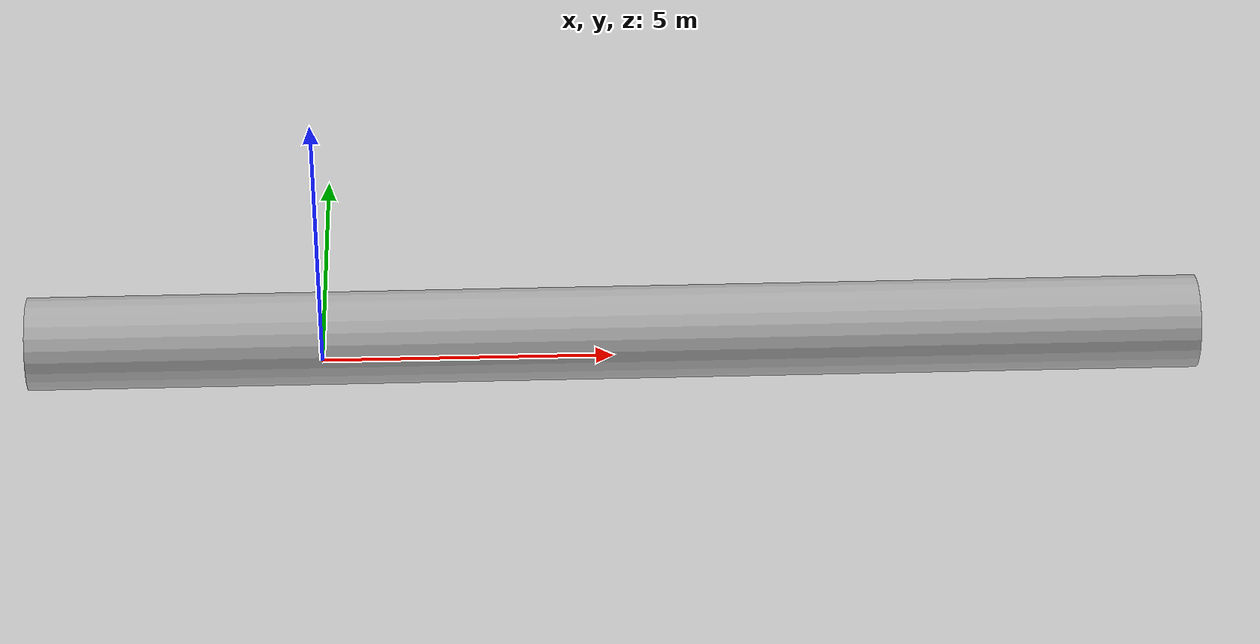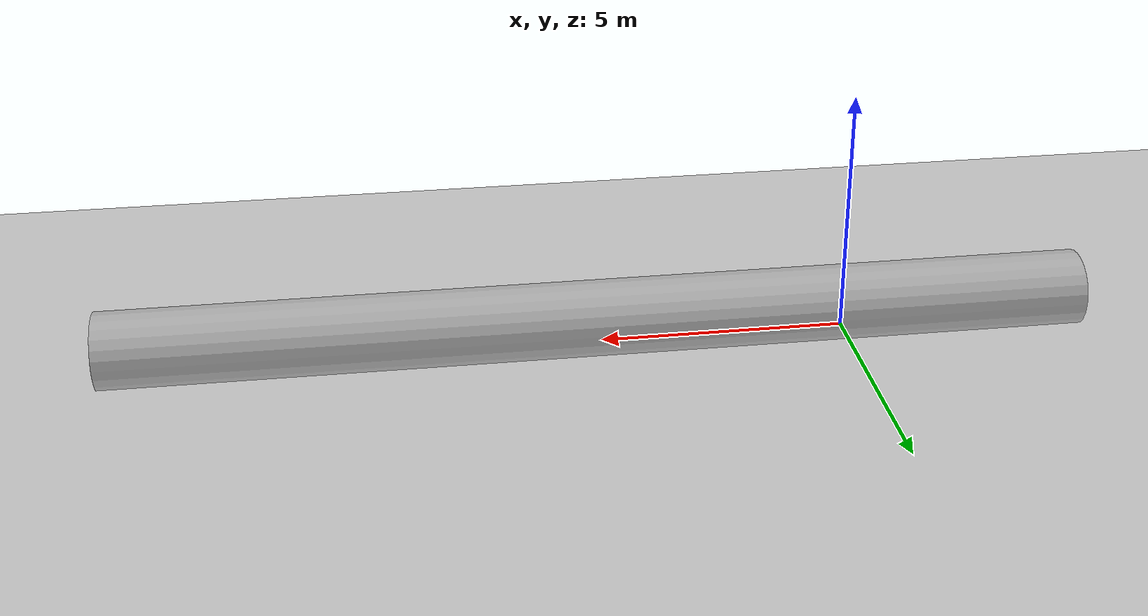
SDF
<?xml version="1.0" ?>
<sdf version="1.6">
  <world name="default">
    <include><uri>model://sun</uri></include>
    <include><uri>model://ground_plane</uri></include>

    <!-- Cylindrical Pipe Segment -->
    <model name="oval_pipe">
      <static>true</static>
      <pose>5 0 0.5 0 1.5707 0</pose>
      <link name="track_floor">
        <collision name="col">
          <geometry>
            <cylinder>
              <radius>0.8</radius>
              <length>20.0</length>
            </cylinder>
          </geometry>
        </collision>
        <visual name="vis">
          <geometry>
            <cylinder>
              <radius>0.8</radius>
              <length>20.0</length>
            </cylinder>
          </geometry>
          <material>
            <ambient>0.5 0.5 0.5 1</ambient>
            <diffuse>0.7 0.7 0.7 1</diffuse>
          </material>
        </visual>
      </link>
    </model>

    <!-- Clean Water Puddle on Floor at 8m (No hole in pipe) -->
    <model name="water_puddle">
      <static>true</static>
      <pose>8 0 0.05 0 0 0</pose>
      <link name="link">
        <visual name="puddle_vis">
          <geometry><box><size>1.2 0.8 0.02</size></box></geometry>
          <material>
            <ambient>0 0.4 0.9 0.9</ambient>
            <diffuse>0 0.5 1 0.9</diffuse>
          </material>
        </visual>
      </link>
    </model>

  </world>
</sdf>
